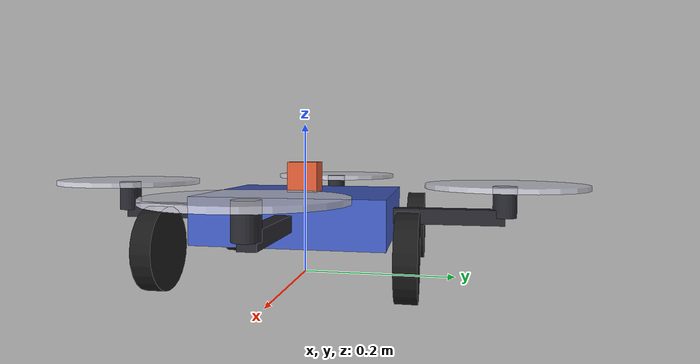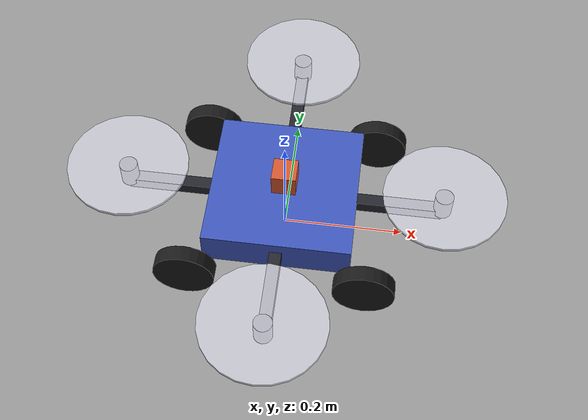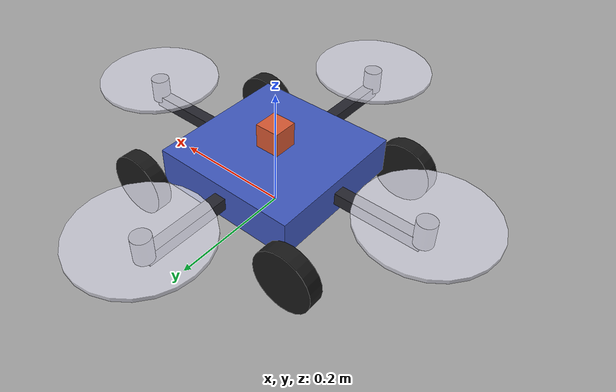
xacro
<?xml version="1.0"?>
<!-- ============================================================
     顶层文件：只负责"组装"，不放任何几何。
     加一个新零件 = 在对应文件夹里新建一个文件 + 在下面加一行 include。
     ============================================================ -->
<robot xmlns:xacro="http://www.ros.org/wiki/xacro" name="sky_rover">

  <!-- 顺序有讲究：先参数和公共资源，再零件。
       零件文件里会用到参数和惯量宏，所以必须排在它们后面，
       否则 xacro 会报 name 'xxx' is not defined。 -->

  <!-- 1. 全机参数、颜色、惯量宏 -->
  <xacro:include filename="common/params.xacro"/>
  <xacro:include filename="common/materials.xacro"/>
  <xacro:include filename="common/inertia.xacro"/>

  <!-- 2. 各部件：一个文件夹一个部件 -->
  <xacro:include filename="body/base.xacro"/>
  <xacro:include filename="arm/arm.xacro"/>
  <xacro:include filename="rotor/rotor.xacro"/>
  <xacro:include filename="wheel/wheel.xacro"/>

  <!-- 3. 传感器 -->
  <xacro:include filename="sensor/imu.xacro"/>

</robot>

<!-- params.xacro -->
<robot xmlns:xacro="http://www.ros.org/wiki/xacro">

  <!-- 机身：一块方形板 -->
  <xacro:property name="body_length" value="0.24"/>
  <xacro:property name="body_width"  value="0.24"/>
  <xacro:property name="body_height" value="0.06"/>
  <xacro:property name="body_mass"   value="1.6"/>
  <xacro:property name="body_half"   value="${body_length/2}"/>

  <!-- 机臂：+ 型布局，前后左右各一条 -->
  <xacro:property name="arm_length" value="0.14"/>
  <xacro:property name="arm_width"  value="0.02"/>
  <xacro:property name="arm_height" value="0.02"/>
  <xacro:property name="arm_mass"   value="0.05"/>
  <xacro:property name="arm_center" value="${body_half + arm_length/2}"/>
  <xacro:property name="arm_half"   value="${arm_length/2}"/>
  <xacro:property name="rotor_offset" value="${body_half + arm_length}"/>

  <!-- 旋翼：电机 + 桨盘 -->
  <xacro:property name="motor_length"    value="0.04"/>
  <xacro:property name="hub_radius"      value="0.015"/>
  <xacro:property name="rotor_radius"    value="0.10"/>
  <xacro:property name="rotor_thickness" value="0.006"/>
  <xacro:property name="rotor_mass"      value="0.04"/>
  <xacro:property name="rotor_z"         value="${motor_length}"/>

  <!-- 轮子：同时充当起落架 -->
  <xacro:property name="wheel_radius"    value="0.05"/>
  <xacro:property name="wheel_width"     value="0.025"/>
  <xacro:property name="wheel_mass"      value="0.12"/>
  <xacro:property name="wheel_offset_xy" value="0.145"/>

  <!-- IMU 传感器 -->
  <xacro:property name="imu_size" value="0.04"/>
  <xacro:property name="imu_mass" value="0.02"/>

  <!-- 高度关系：机身底面留 ground_clearance，轮心高度靠 wheel_radius 反推。
       这两个表达式是"改尺寸不出错"的关键，不要改成手写数字。 -->
  <xacro:property name="ground_clearance" value="0.05"/>
  <xacro:property name="base_z" value="${ground_clearance + body_height/2}"/>
  <xacro:property name="wheel_offset_z" value="${wheel_radius - base_z}"/>

</robot>

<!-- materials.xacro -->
<robot xmlns:xacro="http://www.ros.org/wiki/xacro">

  <material name="body">  <color rgba="0.25 0.35 0.75 1.0"/></material>
  <material name="dark">  <color rgba="0.15 0.15 0.18 1.0"/></material>
  <material name="prop">  <color rgba="0.85 0.85 0.90 0.85"/></material>
  <material name="rubber"><color rgba="0.10 0.10 0.10 1.0"/></material>
  <material name="imu">   <color rgba="0.85 0.35 0.20 1.0"/></material>

</robot>

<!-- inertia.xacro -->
<robot xmlns:xacro="http://www.ros.org/wiki/xacro">

  <xacro:macro name="box_inertia" params="m x y z yaw:=0">
    <inertial>
      <origin xyz="0 0 0" rpy="0 0 ${yaw}"/>
      <mass value="${m}"/>
      <inertia ixx="${m*(y*y+z*z)/12}" ixy="0.0" ixz="0.0"
               iyy="${m*(x*x+z*z)/12}" iyz="0.0"
               izz="${m*(x*x+y*y)/12}"/>
    </inertial>
  </xacro:macro>

  <xacro:macro name="cylinder_inertia" params="m r h roll:=0">
    <inertial>
      <origin xyz="0 0 0" rpy="${roll} 0 0"/>
      <mass value="${m}"/>
      <inertia ixx="${m*(3*r*r+h*h)/12}" ixy="0.0" ixz="0.0"
               iyy="${m*(3*r*r+h*h)/12}" iyz="0.0"
               izz="${m*r*r/2}"/>
    </inertial>
  </xacro:macro>

</robot>

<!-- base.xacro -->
<robot xmlns:xacro="http://www.ros.org/wiki/xacro">

  <!-- 贴地的虚拟坐标系：本身没有几何，只表示机器人在地面的投影点 -->
  <link name="base_footprint"/>

  <joint name="base_joint" type="fixed">
    <parent link="base_footprint"/>
    <child link="base_link"/>
    <origin xyz="0 0 ${base_z}" rpy="0 0 0"/>
  </joint>

  <!-- 机身本体：所有零件的父坐标系 -->
  <link name="base_link">
    <visual>
      <origin xyz="0 0 0" rpy="0 0 0"/>
      <geometry>
        <box size="${body_length} ${body_width} ${body_height}"/>
      </geometry>
      <material name="body"/>
    </visual>
    <collision>
      <origin xyz="0 0 0" rpy="0 0 0"/>
      <geometry>
        <box size="${body_length} ${body_width} ${body_height}"/>
      </geometry>
    </collision>
    <xacro:box_inertia m="${body_mass}" x="${body_length}" y="${body_width}" z="${body_height}"/>
  </link>

</robot>

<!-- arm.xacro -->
<robot xmlns:xacro="http://www.ros.org/wiki/xacro">

  <xacro:macro name="arm" params="prefix dx dy yaw">
    <link name="${prefix}_arm_link">
      <visual>
        <origin xyz="0 0 0" rpy="0 0 ${yaw}"/>
        <geometry>
          <box size="${arm_length} ${arm_width} ${arm_height}"/>
        </geometry>
        <material name="dark"/>
      </visual>
      <collision>
        <origin xyz="0 0 0" rpy="0 0 ${yaw}"/>
        <geometry>
          <box size="${arm_length} ${arm_width} ${arm_height}"/>
        </geometry>
      </collision>
      <xacro:box_inertia m="${arm_mass}" x="${arm_length}" y="${arm_width}" z="${arm_height}" yaw="${yaw}"/>
    </link>

    <joint name="${prefix}_arm_joint" type="fixed">
      <parent link="base_link"/>
      <child link="${prefix}_arm_link"/>
      <!-- 注意：这里 rpy 是 0，子坐标系和 base_link 同向。
           左右两条臂的 box 转向靠的是视觉/碰撞/惯量里的 yaw，
           不是关节的 rpy —— 所以旋翼的偏移可以直接用 dy 写。 -->
      <origin xyz="${dx} ${dy} 0" rpy="0 0 0"/>
    </joint>
  </xacro:macro>

  <!-- 四条机臂的布局：改布局只改这四行 -->
  <xacro:arm prefix="front" dx="${arm_center}"  dy="0"              yaw="0"/>
  <xacro:arm prefix="back"  dx="${-arm_center}" dy="0"              yaw="0"/>
  <xacro:arm prefix="left"  dx="0"              dy="${arm_center}"  yaw="${pi/2}"/>
  <xacro:arm prefix="right" dx="0"              dy="${-arm_center}" yaw="${pi/2}"/>

</robot>

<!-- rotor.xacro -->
<robot xmlns:xacro="http://www.ros.org/wiki/xacro">

  <xacro:macro name="rotor" params="prefix dx dy spin">
    <link name="${prefix}_rotor_link">
      <!-- 桨盘 -->
      <visual>
        <origin xyz="0 0 0" rpy="0 0 0"/>
        <geometry>
          <cylinder radius="${rotor_radius}" length="${rotor_thickness}"/>
        </geometry>
        <material name="prop"/>
      </visual>
      <!-- 电机：从机臂平面长到桨盘下方。origin 的负偏移就是这么来的 -->
      <visual>
        <origin xyz="0 0 ${-motor_length/2}" rpy="0 0 0"/>
        <geometry>
          <cylinder radius="${hub_radius}" length="${motor_length}"/>
        </geometry>
        <material name="dark"/>
      </visual>
      <!-- 碰撞只算桨盘：电机是细长小件，碰撞体越简单仿真越稳 -->
      <collision>
        <origin xyz="0 0 0" rpy="0 0 0"/>
        <geometry>
          <cylinder radius="${rotor_radius}" length="${rotor_thickness}"/>
        </geometry>
      </collision>
      <xacro:cylinder_inertia m="${rotor_mass}" r="${rotor_radius}" h="${rotor_thickness}"/>
    </link>

    <joint name="${prefix}_rotor_joint" type="continuous">
      <parent link="${prefix}_arm_link"/>
      <child link="${prefix}_rotor_link"/>
      <origin xyz="${dx} ${dy} ${rotor_z}" rpy="0 0 0"/>
      <!-- spin 传 ±1：写 -1 不是"装反了"，而是这个关节的正方向绕 z 反向 -->
      <axis xyz="0 0 ${spin}"/>
      <dynamics damping="0.001" friction="0.0"/>
    </joint>
  </xacro:macro>

  <!-- 相邻反向、对角同向 -->
  <xacro:rotor prefix="front" dx="${arm_half}"  dy="0"            spin="1"/>
  <xacro:rotor prefix="back"  dx="${-arm_half}" dy="0"            spin="1"/>
  <xacro:rotor prefix="left"  dx="0"            dy="${arm_half}"  spin="-1"/>
  <xacro:rotor prefix="right" dx="0"            dy="${-arm_half}" spin="-1"/>

</robot>

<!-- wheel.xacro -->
<robot xmlns:xacro="http://www.ros.org/wiki/xacro">

  <xacro:macro name="wheel" params="prefix dx dy">
    <link name="${prefix}_wheel_link">
      <!-- 圆柱默认轴向沿 z，转 90° 才"躺下"变成轮子 -->
      <visual>
        <origin xyz="0 0 0" rpy="${pi/2} 0 0"/>
        <geometry>
          <cylinder radius="${wheel_radius}" length="${wheel_width}"/>
        </geometry>
        <material name="rubber"/>
      </visual>
      <collision>
        <origin xyz="0 0 0" rpy="${pi/2} 0 0"/>
        <geometry>
          <cylinder radius="${wheel_radius}" length="${wheel_width}"/>
        </geometry>
      </collision>
      <xacro:cylinder_inertia m="${wheel_mass}" r="${wheel_radius}" h="${wheel_width}" roll="${pi/2}"/>
    </link>

    <joint name="${prefix}_wheel_joint" type="continuous">
      <parent link="base_link"/>
      <child link="${prefix}_wheel_link"/>
      <origin xyz="${dx} ${dy} ${wheel_offset_z}" rpy="0 0 0"/>
      <!-- 绕 y 轴转 = 前后滚。地面转向靠左右两侧差速（滑动转向） -->
      <axis xyz="0 1 0"/>
      <dynamics damping="0.01" friction="0.0"/>
    </joint>
  </xacro:macro>

  <xacro:wheel prefix="front_left"  dx="${wheel_offset_xy}"  dy="${wheel_offset_xy}"/>
  <xacro:wheel prefix="front_right" dx="${wheel_offset_xy}"  dy="${-wheel_offset_xy}"/>
  <xacro:wheel prefix="rear_left"   dx="${-wheel_offset_xy}" dy="${wheel_offset_xy}"/>
  <xacro:wheel prefix="rear_right"  dx="${-wheel_offset_xy}" dy="${-wheel_offset_xy}"/>

</robot>

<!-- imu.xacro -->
<robot xmlns:xacro="http://www.ros.org/wiki/xacro">

  <link name="imu_link">
    <visual>
      <origin xyz="0 0 0" rpy="0 0 0"/>
      <geometry>
        <box size="${imu_size} ${imu_size} ${imu_size}"/>
      </geometry>
      <material name="imu"/>
    </visual>
    <collision>
      <origin xyz="0 0 0" rpy="0 0 0"/>
      <geometry>
        <box size="${imu_size} ${imu_size} ${imu_size}"/>
      </geometry>
    </collision>
    <xacro:box_inertia m="${imu_mass}" x="${imu_size}" y="${imu_size}" z="${imu_size}"/>
  </link>

  <joint name="imu_joint" type="fixed">
    <parent link="base_link"/>
    <child link="imu_link"/>
    <!-- 机身顶面中心：半个机身厚 + 半个 IMU 边长 -->
    <origin xyz="0 0 ${body_height/2 + imu_size/2}" rpy="0 0 0"/>
  </joint>

</robot>
